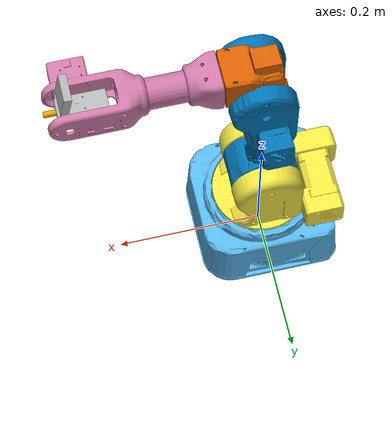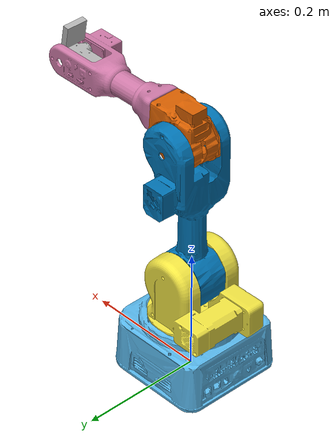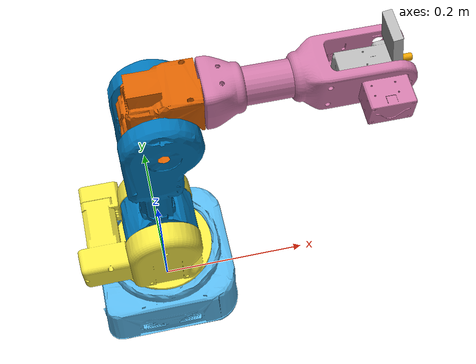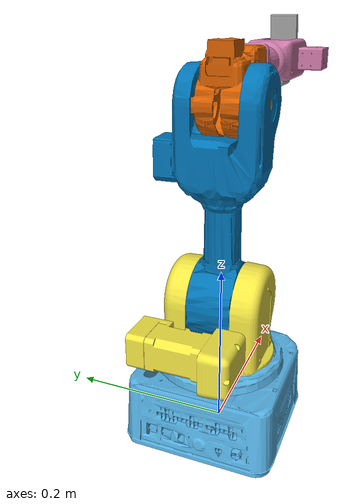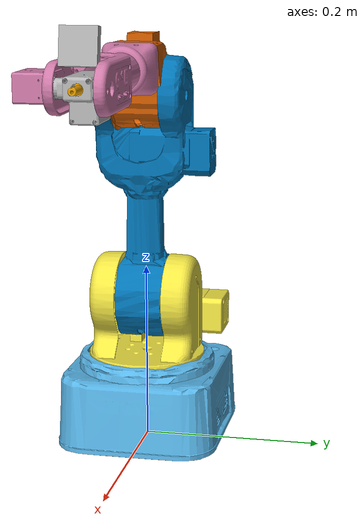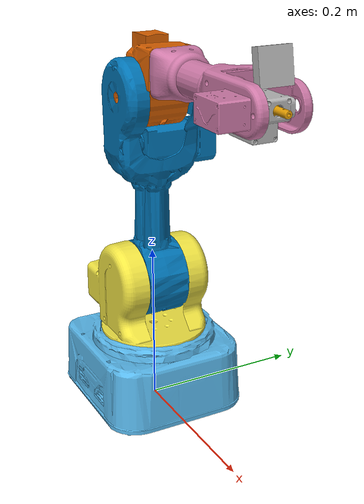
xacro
<?xml version="1.0"?>
<robot xmlns:xacro="http://www.ros.org/wiki/xacro" name="niryo_ned3pro">
    <!-- Including base robot -->
    <xacro:include filename="$(find niryo_robot_description)/urdf/ned3pro/niryo_ned3pro_gazebo.urdf.xacro"/>

    <!-- Properties -->
    <xacro:property name="cameraWidth" value="0.01"/>
    <xacro:property name="cameraHeight" value="0.037"/>
    <xacro:property name="cameraMass" value="0.05"/>

    <!-- Joint for camera -->
    <joint name="camera_joint" type="fixed">
        <axis xyz="0 0 1"/>
        <origin xyz="${cameraHeight/2 + 0.02} 0 0" rpy="0 0 ${-PI/2+0.174533}"/>
        <parent link="wrist_link"/>
        <child link="camera_link"/>
    </joint>

    <!-- Camera link -->

    <link name="camera_link">
        <visual>
            <origin xyz="0 0 0" rpy="0 0 0"/>
            <geometry>
                <box size="${cameraWidth} ${cameraHeight} ${cameraHeight}"/>
            </geometry>
            <material name="Grey">
               <color rgba="0.7 0.7 0.7 1.0"/>
            </material>
        </visual>
        <collision>
            <origin xyz="0 0 0"
                    rpy="0 0 0"/>
            <geometry>
                <box size="${cameraWidth} ${cameraHeight} ${cameraHeight}"/>
            </geometry>
        </collision>
    </link>

    <!-- Add gazebo settings to make the link an camera ! -->
    <gazebo reference="camera_link">
        <material>Gazebo/DarkGrey</material>
        <sensor type="camera" name="camera_gazebo">
            <update_rate>15.0</update_rate>
            <camera name="head">
                <!--69,33 degrees-->
                <horizontal_fov>1.21</horizontal_fov>
                <image>
                    <width>640</width>
                    <height>480</height>
                    <format>R8G8B8</format>
                </image>
                <clip>
                    <near>0.03</near>
                    <far>2</far>
                </clip>
                <distortion>
                    <k1>-0.4146402</k1>
                    <k2>0.2407384</k2>
                    <p1>-0.0</p1>
                    <p2>-0.0</p2>
                    <k3>-0.1040042</k3>
                    <center>0.5 0.5</center>
                </distortion>
            </camera>
            <plugin name="camera_controller" filename="libgazebo_ros_camera.so">
                <alwaysOn>true</alwaysOn>
                <updateRate>0.0</updateRate>
                <cameraName>gazebo_camera</cameraName>
                <imageTopicName>image_raw</imageTopicName>
                <cameraInfoTopicName>camera_info</cameraInfoTopicName>
                <frameName>camera_link</frameName>
            </plugin>
        </sensor>
    </gazebo>
</robot>

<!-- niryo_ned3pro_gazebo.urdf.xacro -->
<robot xmlns:xacro="http://www.ros.org/wiki/xacro" name="niryo_ned3pro">
    <!-- Enable Gazebo control-->
    <gazebo>
        <plugin name="gazebo_ros_control" filename="libgazebo_ros_control.so">
            <robotSimType>gazebo_ros_control/DefaultRobotHWSim</robotSimType>
        </plugin>
    </gazebo>

    <!-- Import Robot -->
    <xacro:include filename="$(find niryo_robot_description)/urdf/ned3pro/niryo_ned3pro.urdf.xacro"/>

    <!-- Import Transmission -->
    <xacro:include filename="$(find niryo_robot_description)/urdf/ned3pro/niryo_ned3pro.transmission.xacro"/>

</robot>

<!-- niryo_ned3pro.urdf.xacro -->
<robot xmlns:xacro="http://www.ros.org/wiki/xacro" name="niryo_ned3pro">
    <!-- Import Properties -->
    <xacro:include filename="$(find niryo_robot_description)/urdf/ned3pro/niryo_ned3pro_param.urdf.xacro" />

    <!-- Links -->

    <link name="world" />

    <link name="base_link">
        <inertial>
            <origin xyz="-0.00437 -0.00535 0.0254" rpy="0 0 0" />
            <mass value="3.70" />
            <inertia ixx="0.01627370211" ixy="0.0" ixz="0.0" iyy="0.01633345071" iyz="0.0"
                izz="0.0254462446" />
        </inertial>
        <visual>
            <origin xyz="0 0 0" rpy="0 0 0" />
            <geometry>
                <mesh filename="package://niryo_robot_description/meshes/ned3pro/stl/base_link.STL" />
            </geometry>
        </visual>
        <collision>
            <origin xyz="0 0 0" rpy="0 0 0" />
            <geometry>
                <mesh filename="package://niryo_robot_description/meshes/ned3pro/stl/base_link.STL" />
            </geometry>
        </collision>
    </link>

    <link name="led_ring_link">
    </link>

    <link name="shoulder_link">
        <inertial>
            <origin xyz="0.01176 0.03686 0.05004" rpy="0 0 0" />
            <mass value="1.018" />
            <inertia ixx="0.00274167942" ixy="0.0" ixz="0.0" iyy="0.00195272317" iyz="0.0"
                izz="0.00292927208" />
        </inertial>
        <visual>
            <origin xyz="0 0 0" rpy="0 0 0" />
            <geometry>
                <mesh
                    filename="package://niryo_robot_description/meshes/ned3pro/stl/shoulder_link.STL" />
            </geometry>
        </visual>
        <collision>
            <origin xyz="0 0 0" rpy="0 0 0" />
            <geometry>
                <mesh filename="package://niryo_robot_description/meshes/ned3pro/stl/shoulder_link.STL" />
            </geometry>
        </collision>
    </link>

    <link name="arm_link">
        <inertial>
            <origin xyz="0.12272 0.00524 -0.00850" rpy="0 0 0" />
            <mass value="1.0" />
            <inertia ixx="0.00148330442" ixy="0.0" ixz="0.0" iyy="0.00937134365" iyz="0.0"
                izz="0.00879836087" />
        </inertial>
        <visual>
            <origin xyz="0 0 0" rpy="0 0 ${PI}" />
            <geometry>
                <mesh filename="package://niryo_robot_description/meshes/ned3pro/stl/arm_link.STL" />
            </geometry>
        </visual>
        <collision>
            <origin xyz="0 0 0" rpy="0 0 ${PI}" />
            <geometry>
                <mesh filename="package://niryo_robot_description/meshes/ned3pro/stl/arm_link.STL" />
            </geometry>
        </collision>
    </link>

    <link name="elbow_link">
        <inertial>
            <origin xyz="0.01691 0.00297 -0.00754" rpy="0 0 0" />
            <mass value="0.350" />
            <inertia ixx="0.00033180114" ixy="0.0" ixz="0.0" iyy="0.00039973587" iyz="0.0"
                izz="0.00043216299" />
        </inertial>
        <visual>
            <origin xyz="0 0 0" rpy="${PI} 0 ${-PI/2}" />
            <geometry>
                <mesh
                    filename="package://niryo_robot_description/meshes/ned3pro/stl/elbow_link.STL" />
            </geometry>
        </visual>
        <collision>
            <origin xyz="0 0 0" rpy="${PI} 0 ${-PI/2}" />
            <geometry>
                <mesh filename="package://niryo_robot_description/meshes/ned3pro/stl/elbow_link.STL" />
            </geometry>
        </collision>
    </link>

    <link name="forearm_link">
        <inertial>
            <origin xyz="0.00020 0.01040 0.15904" rpy="0 0 0" />
            <mass value="0.35538" />
            <inertia ixx="0.00199244039" ixy="0.0" ixz="0.0" iyy="0.00181907606" iyz="0.0"
                izz="0.00029473313" />
        </inertial>
        <visual>
            <origin xyz="0 0 0" rpy="${PI} 0 0" />
            <geometry>
                <mesh
                    filename="package://niryo_robot_description/meshes/ned3pro/stl/forearm_link.STL" />
            </geometry>
        </visual>
        <collision>
            <origin xyz="0 0 0" rpy="${PI} 0 0" />
            <geometry>
                <mesh filename="package://niryo_robot_description/meshes/ned3pro/stl/forearm_link.STL" />
            </geometry>
        </collision>
    </link>

    <link name="wrist_link">
        <inertial>
            <origin xyz="-0.00490 -0.00622 0.00048" rpy="0 0 0" />
            <mass value="0.19887" />
            <inertia ixx="0.00006072214" ixy="0.0" ixz="0.0" iyy="0.00018104057" iyz="0.0"
                izz="0.00019643162" />
        </inertial>
        <visual>
            <origin xyz="0 0 0"
                rpy="0 0 ${PI/2}" />
            <geometry>
                <mesh
                    filename="package://niryo_robot_description/meshes/ned3pro/stl/wrist_link.STL" />
            </geometry>
        </visual>
        <collision>
            <origin xyz="0 0 0"
                rpy="0 0 ${PI/2}" />
            <geometry>
                <mesh filename="package://niryo_robot_description/meshes/ned3pro/stl/wrist_link.STL" />
            </geometry>
        </collision>
    </link>

    <link name="hand_link">
        <inertial>
            <origin xyz="-0.00004 0 -0.00035" rpy="0 0 0" />
            <mass value="0.01083" />
            <inertia ixx="0.00000138319" ixy="0.0" ixz="0.0" iyy="0.00000138107" iyz="0.0"
                izz="0.00000040812" />
        </inertial>
        <visual>
            <origin xyz="0 0 0" rpy="0 0 0" />
            <geometry>
                <mesh filename="package://niryo_robot_description/meshes/ned3pro/stl/hand_link.STL" />
            </geometry>
        </visual>
        <collision>
            <origin xyz="0 0 0" rpy="0 0 0" />
            <geometry>
                <mesh filename="package://niryo_robot_description/meshes/ned3pro/stl/hand_link.STL" />
            </geometry>
        </collision>
    </link>

    <link name="tool_link">
    </link>

    <!-- Joints -->

    <joint name="joint_world" type="fixed">
        <parent link="world" />
        <child link="base_link" />
        <origin xyz="0 0 0" rpy="0 0 0" />
    </joint>

    <joint name="joint_1" type="revolute">
        <origin xyz="0 0 0.0748" rpy="0 0 0" />
        <parent link="base_link" />
        <child link="shoulder_link" />
        <axis xyz="0 0 1" />
        <limit effort="10.0" velocity="10.0"
            lower="${(limit_low_shoulder_rotation +
        safety_pos_margin)}"
            upper="${(limit_up_shoulder_rotation - safety_pos_margin)}" />
    </joint>

    <joint name="joint_2" type="revolute">
        <origin xyz="0 0 0.0925" rpy="${PI/2} 0 0" />
        <parent link="shoulder_link" />
        <child link="arm_link" />
        <axis xyz="0 0 1" />
        <limit effort="10.0" velocity="8.0"
            lower="${(limit_low_arm_rotation +
        safety_pos_margin)}"
            upper="${(limit_up_arm_rotation - safety_pos_margin)}" />
    </joint>

    <joint name="joint_3" type="revolute">
        <origin xyz="0.012 0.23031 0" rpy="0 0 ${PI/2}" />
        <parent link="arm_link" />
        <child link="elbow_link" />
        <axis xyz="0 0 1" />
        <limit effort="7.0" velocity="8.0"
            lower="${(limit_low_elbow_rotation +
        safety_pos_margin)}"
            upper="${(limit_up_elbow_rotation - safety_pos_margin)}" />
    </joint>

    <joint name="joint_4" type="revolute">
        <origin xyz="0.0325 0 0" rpy="${PI/2} 0 0" />
        <parent link="elbow_link" />
        <child link="forearm_link" />
        <axis xyz="0 0 1" />
        <limit effort="7.0" velocity="2.0"
            lower="${(limit_low_forearm_rotation + safety_pos_margin)}"
            upper="${(limit_up_forearm_rotation - safety_pos_margin)}" />
    </joint>

    <joint name="joint_5" type="revolute">
        <origin xyz="0 0 0.23975" rpy="${-PI/2} 0 0" />
        <parent link="forearm_link" />
        <child link="wrist_link" />
        <axis xyz="0 0 1" />
        <limit effort="6.0" velocity="2.0"
            lower="${(limit_low_wrist_rotation + safety_pos_margin)}"
            upper="${(limit_up_wrist_rotation - safety_pos_margin)}" />
    </joint>

    <joint name="joint_6" type="revolute">
        <origin xyz="0 0 0" rpy="${PI/2} 0 0" />
        <parent link="wrist_link" />
        <child link="hand_link" />
        <axis xyz="0 0 1" />
        <limit effort="5.0" velocity="2.0"
            lower="${(limit_low_hand_rotation + safety_pos_margin)}"
            upper="${(limit_up_hand_rotation - safety_pos_margin)}" />
    </joint>

    <joint name="hand_tool_joint" type="fixed">
        <parent link="hand_link" />
        <child link="tool_link" />
        <origin xyz="0 0 ${distance_hand_tool}" rpy="${PI} -${PI/2} 0" />
    </joint>

    <joint name="joint_led_ring" type="fixed">
        <parent link="world" />
        <child link="led_ring_link" />
        <origin xyz="0 0 0.0933" rpy="0 0 0" />
    </joint>

</robot>

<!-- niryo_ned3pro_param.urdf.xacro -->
<robot xmlns:xacro="http://www.ros.org/wiki/xacro" name="niryo_ned3pro">
    <xacro:property name="PI" value="3.14159265359"/>

    <!-- Properties -->

    <xacro:property name="distance_hand_tool" value="0.0275"/>

    <xacro:property name="limit_low_shoulder_rotation" value="-2.96"/>
    <xacro:property name="limit_up_shoulder_rotation" value="2.96"/>
    <xacro:property name="limit_low_arm_rotation" value="-1.75"/>
    <xacro:property name="limit_up_arm_rotation" value="0.44"/>
    <xacro:property name="limit_low_elbow_rotation" value="-1.22"/>
    <xacro:property name="limit_up_elbow_rotation" value="1.57"/>
    <xacro:property name="limit_low_forearm_rotation" value="-2.09"/>
    <xacro:property name="limit_up_forearm_rotation" value="2.09"/>
    <xacro:property name="limit_low_wrist_rotation" value="-1.92"/>
    <xacro:property name="limit_up_wrist_rotation" value="1.92"/>
    <xacro:property name="limit_low_hand_rotation" value="-3.14"/>
    <xacro:property name="limit_up_hand_rotation" value="3.14"/>

    <xacro:property name="safety_pos_margin" value="0.0"/>

</robot>
